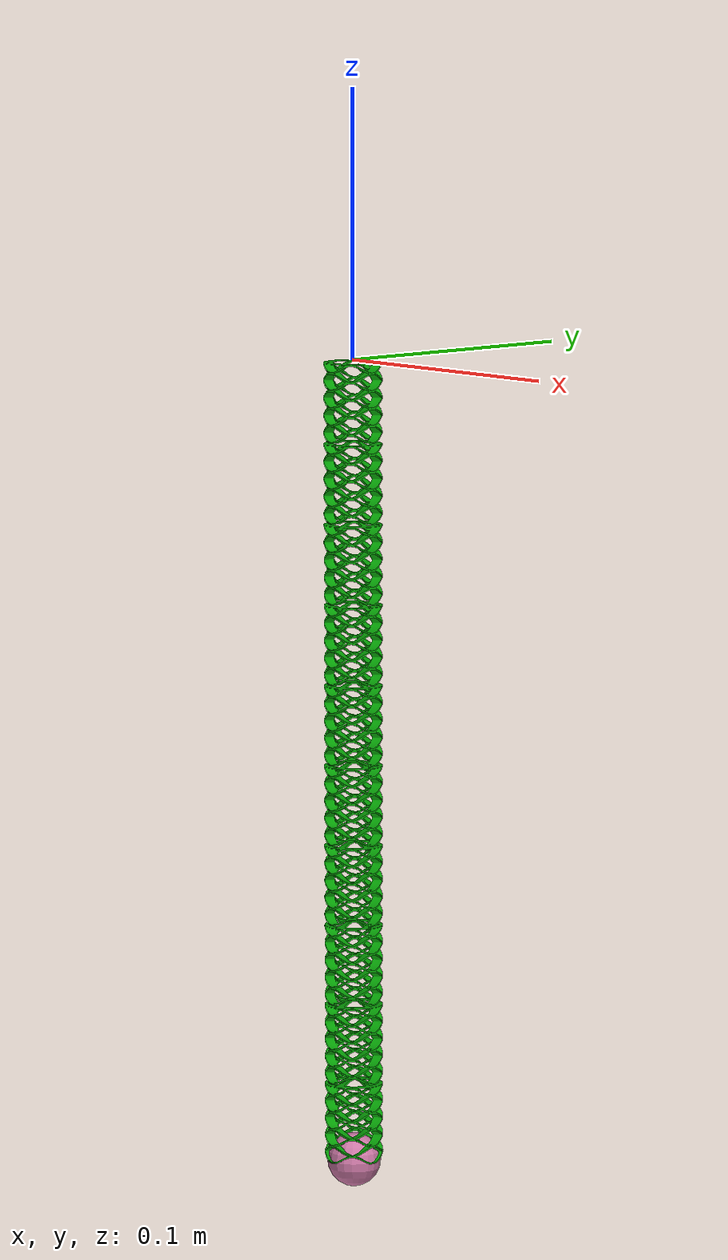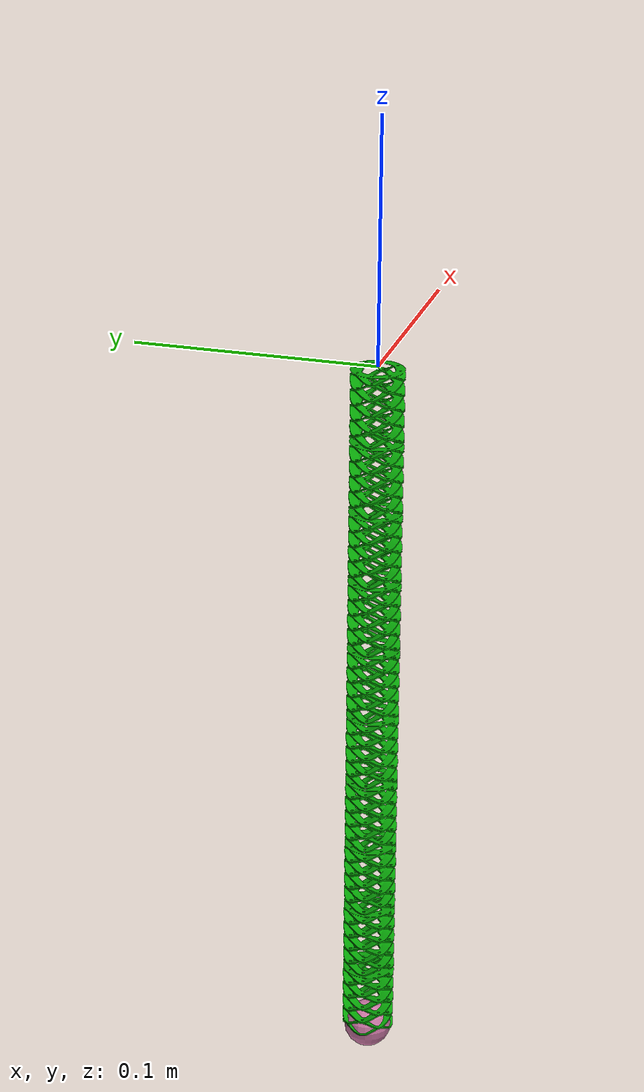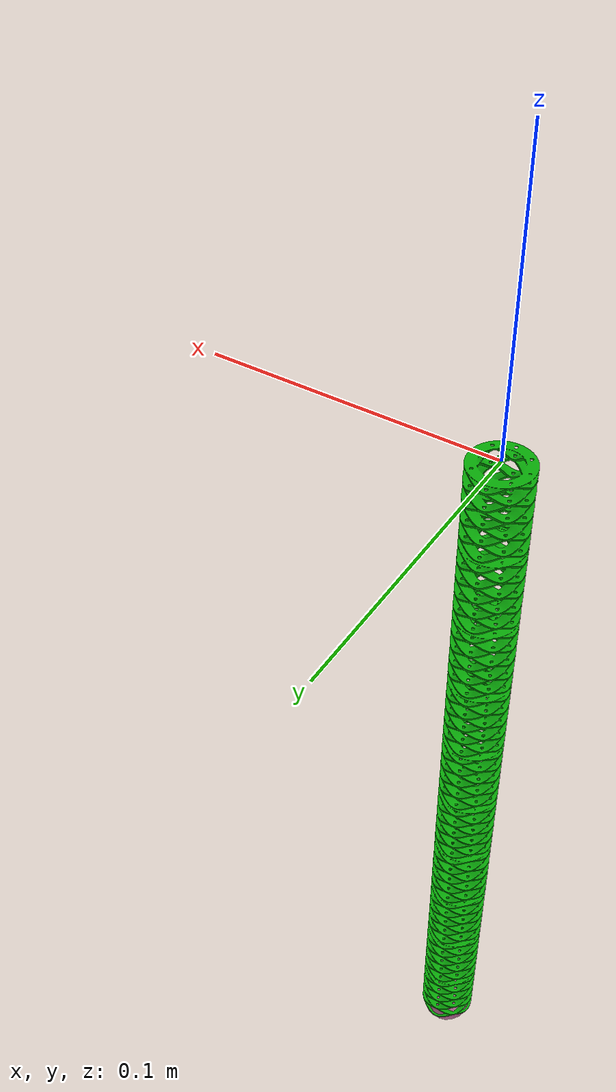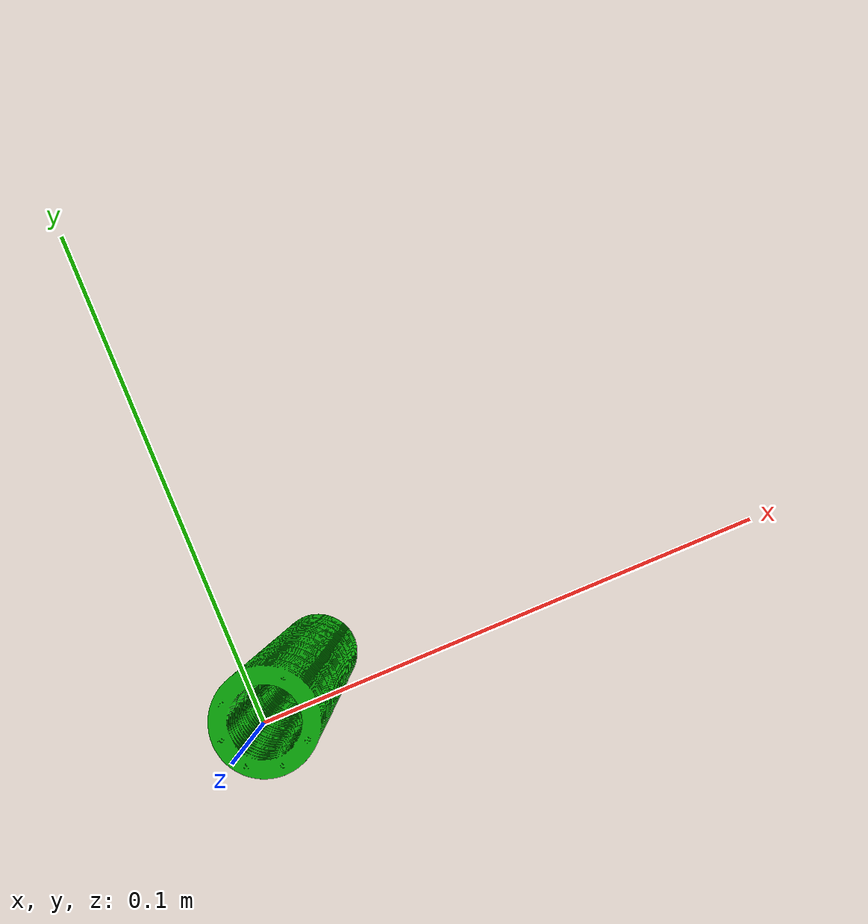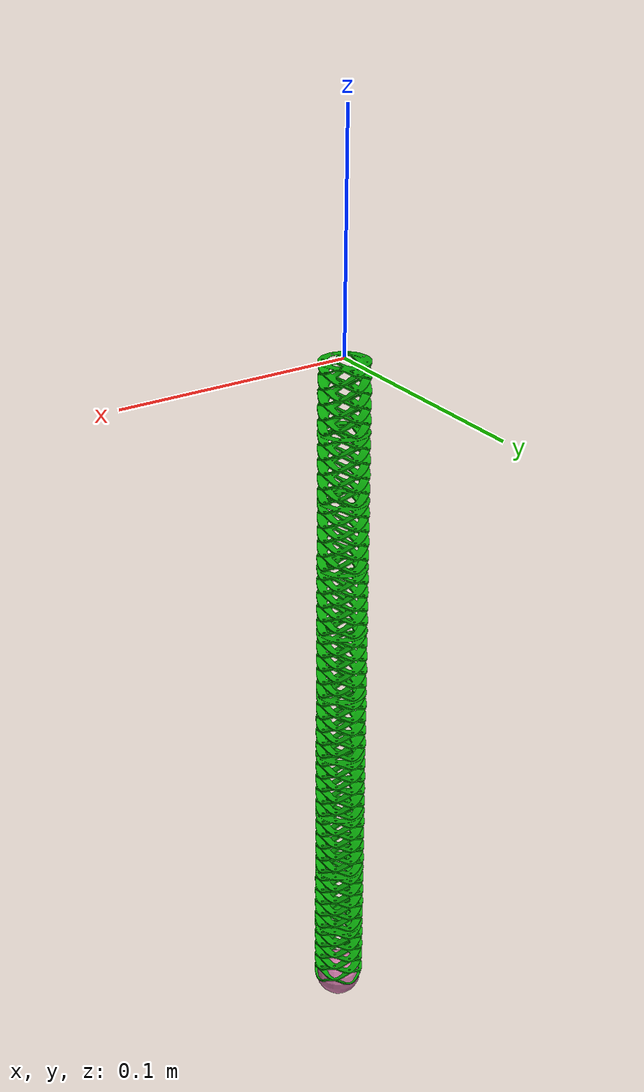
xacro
<?xml version="1.0"?>
<robot xmlns:xacro="http://www.ros.org/wiki/xacro" name="dummy_arm">

    <!-- Macro to calculate cylinder inertia -->
    <xacro:macro name="cylinder_inertia" params="radius length mass">
        <inertia ixx="${0.25 * mass * radius * radius + (1 / 12) * mass * length * length}"
                 ixy="0.0" ixz="0.0"
                 iyy="${0.25 * mass * radius * radius + (1 / 12) * mass * length * length}"
                 iyz="0.0"
                 izz="${0.5 * mass * radius * radius}" />
    </xacro:macro>

    <!-- Macro to calculate sphere inertia -->
    <xacro:macro name="sphere_inertia" params="radius mass">
        <inertia ixx="${2/5 * mass * radius * radius}"
                 ixy="0.0" ixz="0.0"
                 iyy="${2/5 * mass * radius * radius}"
                 iyz="0.0"
                 izz="${2/5 * mass * radius * radius}" />
    </xacro:macro>

    <xacro:property name="width" value="0.01" />
    <xacro:property name="sphere_radius" value="${width}" />

    <!-- Macro for generating the flexible arm -->
    <xacro:macro name="flex_arm" params="prefix L n m xyz rpy">
        <!-- Create the base link -->
        <link name="${prefix}_base"/>

        <!-- First joint between the base and the first link -->
        <xacro:property name="l" value="${L / n}" />
        <link name="${prefix}_linkStart_1"/>

        <link name="${prefix}_linkEnd_1">
            <visual>
                <geometry>
                    <xacro:if value="$(arg full_visuals)">
                        <mesh filename="meshes/single_segment.dae" scale="0.0006 0.0006 ${0.003 / n}"/>
                    </xacro:if>
                    <xacro:unless value="$(arg full_visuals)">
                         <cylinder radius="${width}" length="${l}" />
                    </xacro:unless>
                </geometry>
                <origin xyz="0 0 ${l / 2}" />
            </visual>
            <collision>
                <geometry>
                    <cylinder radius="${width}" length="${l}" />
                </geometry>
                <origin xyz="0 0 ${l / 2}" />
            </collision>
            <inertial>
                <mass value="${m / (n+1)}" />
                <xacro:cylinder_inertia radius="${width}" length="${l}" mass="${m / (n+1)}" />
            </inertial>
        </link>

        <joint name="${prefix}_joint0_1" type="revolute">
            <parent link="${prefix}_base" />
            <child link="${prefix}_linkStart_1" />
            <axis xyz="1 0 0" />
            <origin xyz="${xyz}" rpy="${rpy}" />
            <limit effort="10.0" velocity="1.0" lower="-1.57" upper="1.57" />
        </joint>

        <joint name="${prefix}_joint1_1" type="revolute">
            <parent link="${prefix}_linkStart_1" />
            <child link="${prefix}_linkEnd_1" />
            <axis xyz="0 1 0" />
            <origin xyz="0 0 0" rpy="0 0 0" />
            <limit effort="10.0" velocity="1.0" lower="-1.57" upper="1.57" />
        </joint>

        <!-- Generate the rest of the chain -->
        <xacro:recursive_flex_arm prefix="${prefix}" L="${L}" n="${n - 1}" current_link="1" />
    </xacro:macro>

    <!-- Recursive macro for generating subsequent links -->
    <xacro:macro name="recursive_flex_arm" params="prefix L n current_link">
        <xacro:property name="N" value="${n + current_link}" />
        <xacro:property name="l" value="${L / N}" />
        <xacro:if value="${n > 0}">

            <!-- Create the next link -->
            <link name="${prefix}_linkEnd_${current_link + 1}">
                <visual>
                    <geometry>
                        <xacro:if value="$(arg full_visuals)">
                            <mesh filename="meshes/single_segment.dae" scale="0.0006 0.0006 ${0.003 / N}"/>
                        </xacro:if>
                        <xacro:unless value="$(arg full_visuals)">
                            <cylinder radius="${width}" length="${l}" />
                        </xacro:unless>
                    </geometry>
                    <origin xyz="0 0 ${l / 2}" />
                </visual>
                <collision>
                    <geometry>
                        <cylinder radius="${width}" length="${l}" />
                    </geometry>
                    <origin xyz="0 0 ${l / 2}" />
                </collision>
                <inertial>
                    <mass value="${m / (N +1)}" />
                    <xacro:cylinder_inertia radius="${width}" length="${l}" mass="${m / (N +1)}" />
                </inertial>
            </link>

            <!-- Create helper Links -->
            <link name="${prefix}_linkStart_${current_link+1}"/>
            <link name="${prefix}_linkMid_${current_link+1}"/>

            <!-- Create the prismatic joint -->
            <joint name="${prefix}_joint0_${current_link + 1}" type="prismatic">
                <parent link="${prefix}_linkEnd_${current_link}" />
                <child link="${prefix}_linkStart_${current_link+1}" />
                <axis xyz="0 0 1" />
                <origin xyz="0 0 ${l}" rpy="0 0 0" />
                <limit effort="10.0" velocity="1.0" lower="${-0.5 * l}" upper="0" />
            </joint>

            <!-- Create the revolute first revolute joint -->
            <joint name="${prefix}_joint1_${current_link + 1}" type="revolute">
                <parent link="${prefix}_linkStart_${current_link+1}" />
                <child link="${prefix}_linkMid_${current_link+1}" />
                <axis xyz="0 1 0" />
                <origin xyz="0 0 0" rpy="0 0 0" />
                <limit effort="10.0" velocity="1.0" lower="-1.57" upper="1.57" />
            </joint>

            <!-- Create the revolute joint -->
            <joint name="${prefix}_joint2_${current_link + 1}" type="revolute">
                <parent link="${prefix}_linkMid_${current_link+1}" />
                <child link="${prefix}_linkEnd_${current_link + 1}" />
                <axis xyz="1 0 0" />
                <origin xyz="0 0 0" rpy="0 0 0" />
                <limit effort="10.0" velocity="1.0" lower="-1.57" upper="1.57" />
            </joint>

            <!-- Recursively generate the rest of the chain -->
            <xacro:recursive_flex_arm prefix="${prefix}" L="${L}" n="${n - 1}" current_link="${current_link + 1}" />
        </xacro:if>

        <!-- Add sphere at the end of the last link -->
        <xacro:unless value="${n > 0}">
            <link name="${prefix}_sphere">
                <visual>
                    <geometry>
                        <sphere radius="${sphere_radius}" />
                    </geometry>
                    <origin xyz="0 0 ${sphere_radius}" />
                </visual>
                <collision>
                    <geometry>
                        <sphere radius="${sphere_radius}" />
                    </geometry>
                    <origin xyz="0 0 ${sphere_radius}" />
                </collision>
                <inertial>
                    <mass value="${m / (N + 1)}" />
                    <xacro:sphere_inertia radius="${sphere_radius}" mass="${m / (N + 1)}" />
                </inertial>
            </link>

            <joint name="${prefix}_fixed_joint_sphere" type="fixed">
                <parent link="${prefix}_linkEnd_${current_link}" />
                <child link="${prefix}_sphere" />
                <origin xyz="0 0 ${l-sphere_radius}" rpy="0 0 0" />
            </joint>
        </xacro:unless>
    </xacro:macro>

    <xacro:arg name="full_visuals" default="true"/>
    <xacro:flex_arm prefix="arm1" L="0.3" n="10" m="1.0" xyz=" 0.0 0.0 0" rpy="3.141 0 -0.7854"/>

</robot>
